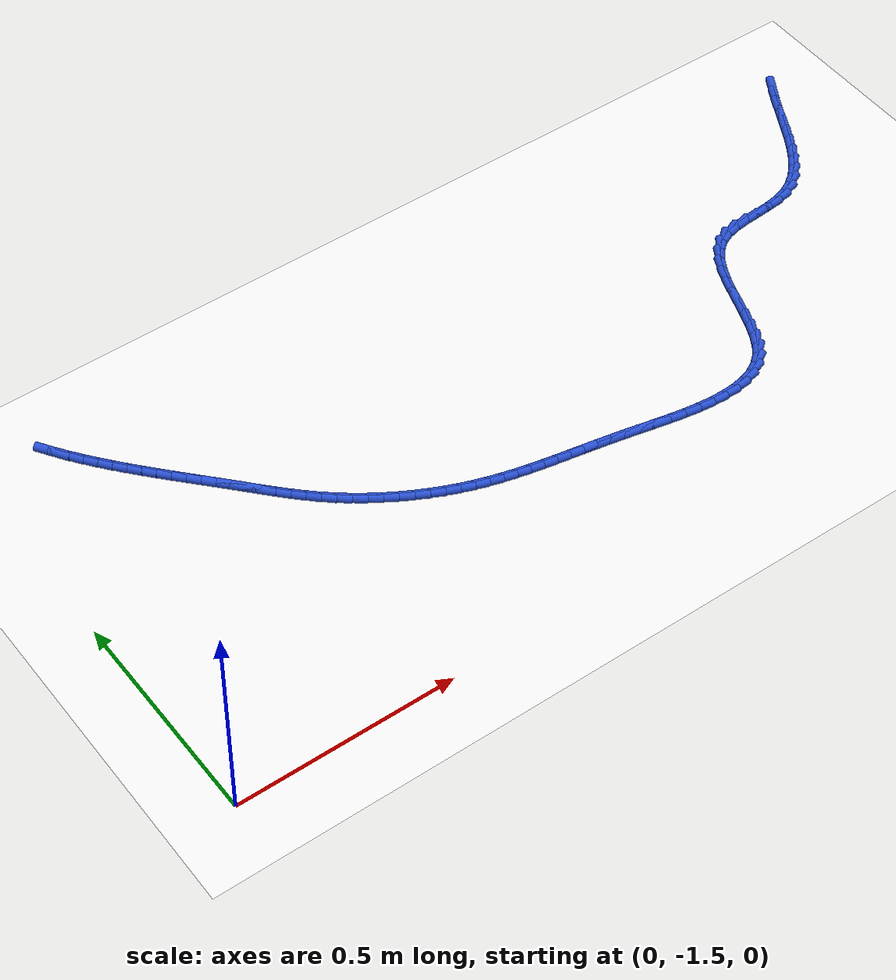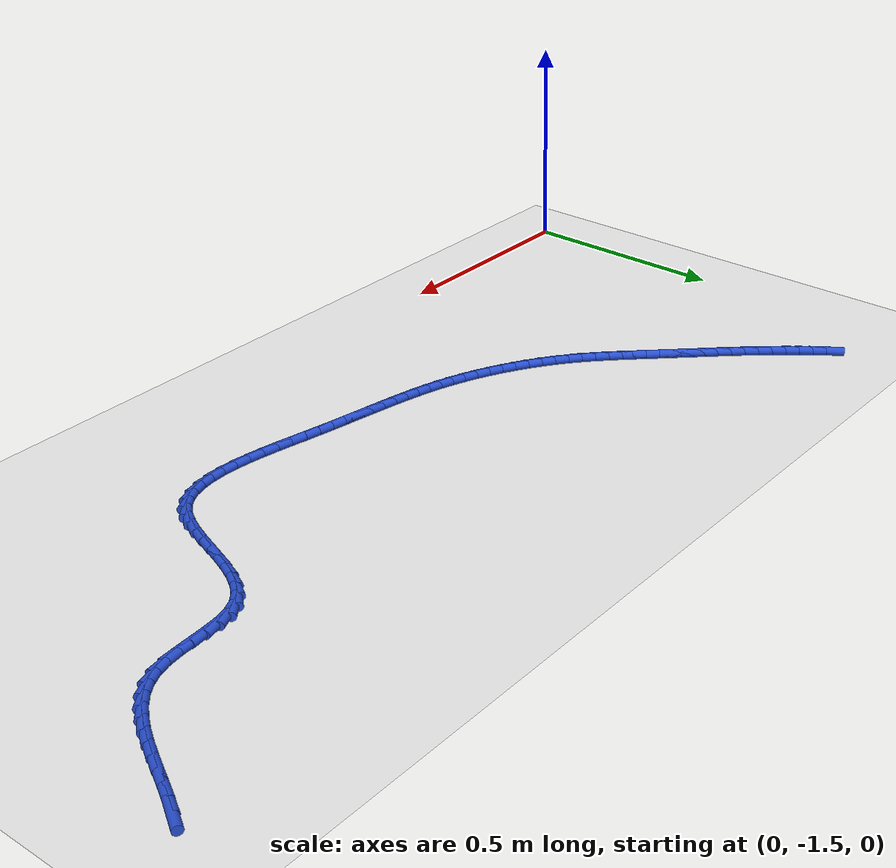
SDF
<sdf version="1.6">
 <world name="default">
  <model name="ground_plane">
   <static>1</static>
   <link name="link">
    <collision name="collision">
     <geometry><plane><normal>0 0 1</normal><size>100 100</size></plane></geometry>
     <surface><friction><ode><mu>100</mu><mu2>50</mu2></ode></friction></surface>
    </collision>
    <visual name="visual">
     <cast_shadows>0</cast_shadows>
     <geometry><plane><normal>0 0 1</normal><size>100 100</size></plane></geometry>
     <material>
      <script><uri>file://media/materials/scripts/gazebo.material</uri><name>Gazebo/WhiteGlow</name></script>
     </material>
    </visual>
   </link>
  </model>
  <model name="line">
   <link name="link_141">
    <pose>2.0868482700561533 -0.5757188277680517 0.01 0 1.57 1.0497695654576624</pose>
    <collision name="collision">
     <geometry><cylinder><radius>0.01</radius><length>0.08</length></cylinder></geometry>
    </collision>
    <visual name="visual">
     <material>
      <script><name>Gazebo/Blue</name><uri>file://media/materials/scripts/gazebo.material</uri></script>
     </material>
     <geometry><cylinder><radius>0.01</radius><length>0.08</length></cylinder></geometry>
    </visual>
   </link>
   <link name="link_142">
    <pose>2.070050760424879 -0.60498655531769 0.01 0 1.57 1.081714339170749</pose>
    <collision name="collision">
     <geometry><cylinder><radius>0.01</radius><length>0.08</length></cylinder></geometry>
    </collision>
    <visual name="visual">
     <material>
      <script><name>Gazebo/Blue</name><uri>file://media/materials/scripts/gazebo.material</uri></script>
     </material>
     <geometry><cylinder><radius>0.01</radius><length>0.08</length></cylinder></geometry>
    </visual>
   </link>
   <link name="link_143">
    <pose>2.0540576509674735 -0.6350369554706778 0.01 0 1.57 1.0960622038245185</pose>
    <collision name="collision">
     <geometry><cylinder><radius>0.01</radius><length>0.08</length></cylinder></geometry>
    </collision>
    <visual name="visual">
     <material>
      <script><name>Gazebo/Blue</name><uri>file://media/materials/scripts/gazebo.material</uri></script>
     </material>
     <geometry><cylinder><radius>0.01</radius><length>0.08</length></cylinder></geometry>
    </visual>
   </link>
   <link name="link_144">
    <pose>2.0384884671146235 -0.6653309705653818 0.01 0 1.57 1.0932082392516</pose>
    <collision name="collision">
     <geometry><cylinder><radius>0.01</radius><length>0.08</length></cylinder></geometry>
    </collision>
    <visual name="visual">
     <material>
      <script><name>Gazebo/Blue</name><uri>file://media/materials/scripts/gazebo.material</uri></script>
     </material>
     <geometry><cylinder><radius>0.01</radius><length>0.08</length></cylinder></geometry>
    </visual>
   </link>
   <link name="link_145">
    <pose>2.0229627342970162 -0.6953295429401681 0.01 0 1.57 1.0726374273146841</pose>
    <collision name="collision">
     <geometry><cylinder><radius>0.01</radius><length>0.08</length></cylinder></geometry>
    </collision>
    <visual name="visual">
     <material>
      <script><name>Gazebo/Blue</name><uri>file://media/materials/scripts/gazebo.material</uri></script>
     </material>
     <geometry><cylinder><radius>0.01</radius><length>0.08</length></cylinder></geometry>
    </visual>
   </link>
   <link name="link_146">
    <pose>2.0070999779453382 -0.7244936149334031 0.01 0 1.57 1.0328690640263993</pose>
    <collision name="collision">
     <geometry><cylinder><radius>0.01</radius><length>0.08</length></cylinder></geometry>
    </collision>
    <visual name="visual">
     <material>
      <script><name>Gazebo/Blue</name><uri>file://media/materials/scripts/gazebo.material</uri></script>
     </material>
     <geometry><cylinder><radius>0.01</radius><length>0.08</length></cylinder></geometry>
    </visual>
   </link>
   <link name="link_147">
    <pose>1.9905197234902756 -0.7522841288834535 0.01 0 1.57 0.9714756544072928</pose>
    <collision name="collision">
     <geometry><cylinder><radius>0.01</radius><length>0.08</length></cylinder></geometry>
    </collision>
    <visual name="visual">
     <material>
      <script><name>Gazebo/Blue</name><uri>file://media/materials/scripts/gazebo.material</uri></script>
     </material>
     <geometry><cylinder><radius>0.01</radius><length>0.08</length></cylinder></geometry>
    </visual>
   </link>
   <link name="link_148">
    <pose>1.9728414963625158 -0.7781620271286842 0.01 0 1.57 0.8853286299328608</pose>
    <collision name="collision">
     <geometry><cylinder><radius>0.01</radius><length>0.08</length></cylinder></geometry>
    </collision>
    <visual name="visual">
     <material>
      <script><name>Gazebo/Blue</name><uri>file://media/materials/scripts/gazebo.material</uri></script>
     </material>
     <geometry><cylinder><radius>0.01</radius><length>0.08</length></cylinder></geometry>
    </visual>
   </link>
   <link name="link_149">
    <pose>1.9536848219927465 -0.8015882520074623 0.01 0 1.57 0.771404213848801</pose>
    <collision name="collision">
     <geometry><cylinder><radius>0.01</radius><length>0.08</length></cylinder></geometry>
    </collision>
    <visual name="visual">
     <material>
      <script><name>Gazebo/Blue</name><uri>file://media/materials/scripts/gazebo.material</uri></script>
     </material>
     <geometry><cylinder><radius>0.01</radius><length>0.08</length></cylinder></geometry>
    </visual>
   </link>
   <link name="link_150">
    <pose>1.9326692258116525 -0.8220237458581536 0.01 0 1.57 0.6285989111137188</pose>
    <collision name="collision">
     <geometry><cylinder><radius>0.01</radius><length>0.08</length></cylinder></geometry>
    </collision>
    <visual name="visual">
     <material>
      <script><name>Gazebo/Blue</name><uri>file://media/materials/scripts/gazebo.material</uri></script>
     </material>
     <geometry><cylinder><radius>0.01</radius><length>0.08</length></cylinder></geometry>
    </visual>
   </link>
   <link name="link_151">
    <pose>1.9094142332499215 -0.838929451019125 0.01 0 1.57 0.46053325886857144</pose>
    <collision name="collision">
     <geometry><cylinder><radius>0.01</radius><length>0.08</length></cylinder></geometry>
    </collision>
    <visual name="visual">
     <material>
      <script><name>Gazebo/Blue</name><uri>file://media/materials/scripts/gazebo.material</uri></script>
     </material>
     <geometry><cylinder><radius>0.01</radius><length>0.08</length></cylinder></geometry>
    </visual>
   </link>
   <link name="link_152">
    <pose>1.8835393697382408 -0.8517663098287421 0.01 0 1.57 0.2807268472819979</pose>
    <collision name="collision">
     <geometry><cylinder><radius>0.01</radius><length>0.08</length></cylinder></geometry>
    </collision>
    <visual name="visual">
     <material>
      <script><name>Gazebo/Blue</name><uri>file://media/materials/scripts/gazebo.material</uri></script>
     </material>
     <geometry><cylinder><radius>0.01</radius><length>0.08</length></cylinder></geometry>
    </visual>
   </link>
   <link name="link_153">
    <pose>1.8547194753691074 -0.8600762796387333 0.01 0 1.57 0.14490175157847032</pose>
    <collision name="collision">
     <geometry><cylinder><radius>0.01</radius><length>0.08</length></cylinder></geometry>
    </collision>
    <visual name="visual">
     <material>
      <script><name>Gazebo/Blue</name><uri>file://media/materials/scripts/gazebo.material</uri></script>
     </material>
     <geometry><cylinder><radius>0.01</radius><length>0.08</length></cylinder></geometry>
    </visual>
   </link>
   <link name="link_154">
    <pose>1.8234723909819142 -0.8646359943682631 0.01 0 1.57 0.07824607830905576</pose>
    <collision name="collision">
     <geometry><cylinder><radius>0.01</radius><length>0.08</length></cylinder></geometry>
    </collision>
    <visual name="visual">
     <material>
      <script><name>Gazebo/Blue</name><uri>file://media/materials/scripts/gazebo.material</uri></script>
     </material>
     <geometry><cylinder><radius>0.01</radius><length>0.08</length></cylinder></geometry>
    </visual>
   </link>
   <link name="link_155">
    <pose>1.7909728317687854 -0.8671841598849002 0.01 0 1.57 0.07054470162190267</pose>
    <collision name="collision">
     <geometry><cylinder><radius>0.01</radius><length>0.08</length></cylinder></geometry>
    </collision>
    <visual name="visual">
     <material>
      <script><name>Gazebo/Blue</name><uri>file://media/materials/scripts/gazebo.material</uri></script>
     </material>
     <geometry><cylinder><radius>0.01</radius><length>0.08</length></cylinder></geometry>
    </visual>
   </link>
   <link name="link_156">
    <pose>1.758412874524758 -0.8694849102238165 0.01 0 1.57 0.12087392398452639</pose>
    <collision name="collision">
     <geometry><cylinder><radius>0.01</radius><length>0.08</length></cylinder></geometry>
    </collision>
    <visual name="visual">
     <material>
      <script><name>Gazebo/Blue</name><uri>file://media/materials/scripts/gazebo.material</uri></script>
     </material>
     <geometry><cylinder><radius>0.01</radius><length>0.08</length></cylinder></geometry>
    </visual>
   </link>
   <link name="link_157">
    <pose>1.7269845960448624 -0.8733023794201842 0.01 0 1.57 0.23922050773377004</pose>
    <collision name="collision">
     <geometry><cylinder><radius>0.01</radius><length>0.08</length></cylinder></geometry>
    </collision>
    <visual name="visual">
     <material>
      <script><name>Gazebo/Blue</name><uri>file://media/materials/scripts/gazebo.material</uri></script>
     </material>
     <geometry><cylinder><radius>0.01</radius><length>0.08</length></cylinder></geometry>
    </visual>
   </link>
   <link name="link_158">
    <pose>1.697880073124133 -0.880400701509176 0.01 0 1.57 0.44254591268933074</pose>
    <collision name="collision">
     <geometry><cylinder><radius>0.01</radius><length>0.08</length></cylinder></geometry>
    </collision>
    <visual name="visual">
     <material>
      <script><name>Gazebo/Blue</name><uri>file://media/materials/scripts/gazebo.material</uri></script>
     </material>
     <geometry><cylinder><radius>0.01</radius><length>0.08</length></cylinder></geometry>
    </visual>
   </link>
   <link name="link_159">
    <pose>1.6722826854923027 -0.8925311611996024 0.01 0 1.57 0.6940749387545673</pose>
    <collision name="collision">
     <geometry><cylinder><radius>0.01</radius><length>0.08</length></cylinder></geometry>
    </collision>
    <visual name="visual">
     <material>
      <script><name>Gazebo/Blue</name><uri>file://media/materials/scripts/gazebo.material</uri></script>
     </material>
     <geometry><cylinder><radius>0.01</radius><length>0.08</length></cylinder></geometry>
    </visual>
   </link>
   <link name="link_160">
    <pose>1.6507198783240626 -0.9104759442135106 0.01 0 1.57 0.902123510475342</pose>
    <collision name="collision">
     <geometry><cylinder><radius>0.01</radius><length>0.08</length></cylinder></geometry>
    </collision>
    <visual name="visual">
     <material>
      <script><name>Gazebo/Blue</name><uri>file://media/materials/scripts/gazebo.material</uri></script>
     </material>
     <geometry><cylinder><radius>0.01</radius><length>0.08</length></cylinder></geometry>
    </visual>
   </link>
   <link name="link_161">
    <pose>1.6326167179854583 -0.9333885460655545 0.01 0 1.57 1.0526253918397517</pose>
    <collision name="collision">
     <geometry><cylinder><radius>0.01</radius><length>0.08</length></cylinder></geometry>
    </collision>
    <visual name="visual">
     <material>
      <script><name>Gazebo/Blue</name><uri>file://media/materials/scripts/gazebo.material</uri></script>
     </material>
     <geometry><cylinder><radius>0.01</radius><length>0.08</length></cylinder></geometry>
    </visual>
   </link>
   <link name="link_162">
    <pose>1.6172926695164083 -0.9602664434460083 0.01 0 1.57 1.1536092212361257</pose>
    <collision name="collision">
     <geometry><cylinder><radius>0.01</radius><length>0.08</length></cylinder></geometry>
    </collision>
    <visual name="visual">
     <material>
      <script><name>Gazebo/Blue</name><uri>file://media/materials/scripts/gazebo.material</uri></script>
     </material>
     <geometry><cylinder><radius>0.01</radius><length>0.08</length></cylinder></geometry>
    </visual>
   </link>
   <link name="link_163">
    <pose>1.6040671979568328 -0.9901071130451431 0.01 0 1.57 1.2152803799611773</pose>
    <collision name="collision">
     <geometry><cylinder><radius>0.01</radius><length>0.08</length></cylinder></geometry>
    </collision>
    <visual name="visual">
     <material>
      <script><name>Gazebo/Blue</name><uri>file://media/materials/scripts/gazebo.material</uri></script>
     </material>
     <geometry><cylinder><radius>0.01</radius><length>0.08</length></cylinder></geometry>
    </visual>
   </link>
   <link name="link_164">
    <pose>1.5922597683466524 -1.0219080315532338 0.01 0 1.57 1.244920136396728</pose>
    <collision name="collision">
     <geometry><cylinder><radius>0.01</radius><length>0.08</length></cylinder></geometry>
    </collision>
    <visual name="visual">
     <material>
      <script><name>Gazebo/Blue</name><uri>file://media/materials/scripts/gazebo.material</uri></script>
     </material>
     <geometry><cylinder><radius>0.01</radius><length>0.08</length></cylinder></geometry>
    </visual>
   </link>
   <link name="link_165">
    <pose>1.5811898457257862 -1.054666675660553 0.01 0 1.57 1.2460683005755346</pose>
    <collision name="collision">
     <geometry><cylinder><radius>0.01</radius><length>0.08</length></cylinder></geometry>
    </collision>
    <visual name="visual">
     <material>
      <script><name>Gazebo/Blue</name><uri>file://media/materials/scripts/gazebo.material</uri></script>
     </material>
     <geometry><cylinder><radius>0.01</radius><length>0.08</length></cylinder></geometry>
    </visual>
   </link>
   <link name="link_166">
    <pose>1.5701768951341535 -1.0873805220573736 0.01 0 1.57 1.2186431578017984</pose>
    <collision name="collision">
     <geometry><cylinder><radius>0.01</radius><length>0.08</length></cylinder></geometry>
    </collision>
    <visual name="visual">
     <material>
      <script><name>Gazebo/Blue</name><uri>file://media/materials/scripts/gazebo.material</uri></script>
     </material>
     <geometry><cylinder><radius>0.01</radius><length>0.08</length></cylinder></geometry>
    </visual>
   </link>
   <link name="link_167">
    <pose>1.558540381611675 -1.1190470474339695 0.01 0 1.57 1.158858883931804</pose>
    <collision name="collision">
     <geometry><cylinder><radius>0.01</radius><length>0.08</length></cylinder></geometry>
    </collision>
    <visual name="visual">
     <material>
      <script><name>Gazebo/Blue</name><uri>file://media/materials/scripts/gazebo.material</uri></script>
     </material>
     <geometry><cylinder><radius>0.01</radius><length>0.08</length></cylinder></geometry>
    </visual>
   </link>
   <link name="link_168">
    <pose>1.5455997701982702 -1.1486637284806136 0.01 0 1.57 1.0588983465171604</pose>
    <collision name="collision">
     <geometry><cylinder><radius>0.01</radius><length>0.08</length></cylinder></geometry>
    </collision>
    <visual name="visual">
     <material>
      <script><name>Gazebo/Blue</name><uri>file://media/materials/scripts/gazebo.material</uri></script>
     </material>
     <geometry><cylinder><radius>0.01</radius><length>0.08</length></cylinder></geometry>
    </visual>
   </link>
   <link name="link_169">
    <pose>1.5306745259338588 -1.1752280418875791 0.01 0 1.57 0.9074574577301515</pose>
    <collision name="collision">
     <geometry><cylinder><radius>0.01</radius><length>0.08</length></cylinder></geometry>
    </collision>
    <visual name="visual">
     <material>
      <script><name>Gazebo/Blue</name><uri>file://media/materials/scripts/gazebo.material</uri></script>
     </material>
     <geometry><cylinder><radius>0.01</radius><length>0.08</length></cylinder></geometry>
    </visual>
   </link>
   <link name="link_170">
    <pose>1.5130841138583597 -1.1977374643451397 0.01 0 1.57 0.7025351067429351</pose>
    <collision name="collision">
     <geometry><cylinder><radius>0.01</radius><length>0.08</length></cylinder></geometry>
    </collision>
    <visual name="visual">
     <material>
      <script><name>Gazebo/Blue</name><uri>file://media/materials/scripts/gazebo.material</uri></script>
     </material>
     <geometry><cylinder><radius>0.01</radius><length>0.08</length></cylinder></geometry>
    </visual>
   </link>
   <link name="link_171">
    <pose>1.4922683576117004 -1.2153607351306024 0.01 0 1.57 0.4943339869187233</pose>
    <collision name="collision">
     <geometry><cylinder><radius>0.01</radius><length>0.08</length></cylinder></geometry>
    </collision>
    <visual name="visual">
     <material>
      <script><name>Gazebo/Blue</name><uri>file://media/materials/scripts/gazebo.material</uri></script>
     </material>
     <geometry><cylinder><radius>0.01</radius><length>0.08</length></cylinder></geometry>
    </visual>
   </link>
   <link name="link_172">
    <pose>1.4683569438036854 -1.2282482243886577 0.01 0 1.57 0.3140886659193652</pose>
    <collision name="collision">
     <geometry><cylinder><radius>0.01</radius><length>0.08</length></cylinder></geometry>
    </collision>
    <visual name="visual">
     <material>
      <script><name>Gazebo/Blue</name><uri>file://media/materials/scripts/gazebo.material</uri></script>
     </material>
     <geometry><cylinder><radius>0.01</radius><length>0.08</length></cylinder></geometry>
    </visual>
   </link>
   <link name="link_173">
    <pose>1.4417249083340813 -1.2368994186056934 0.01 0 1.57 0.16800984130143268</pose>
    <collision name="collision">
     <geometry><cylinder><radius>0.01</radius><length>0.08</length></cylinder></geometry>
    </collision>
    <visual name="visual">
     <material>
      <script><name>Gazebo/Blue</name><uri>file://media/materials/scripts/gazebo.material</uri></script>
     </material>
     <geometry><cylinder><radius>0.01</radius><length>0.08</length></cylinder></geometry>
    </visual>
   </link>
   <link name="link_174">
    <pose>1.412747583191155 -1.2418142255830893 0.01 0 1.57 0.05417874890019835</pose>
    <collision name="collision">
     <geometry><cylinder><radius>0.01</radius><length>0.08</length></cylinder></geometry>
    </collision>
    <visual name="visual">
     <material>
      <script><name>Gazebo/Blue</name><uri>file://media/materials/scripts/gazebo.material</uri></script>
     </material>
     <geometry><cylinder><radius>0.01</radius><length>0.08</length></cylinder></geometry>
    </visual>
   </link>
   <link name="link_175">
    <pose>1.381800300363175 -1.2434925531222252 0.01 0 1.57 -0.03250796731429631</pose>
    <collision name="collision">
     <geometry><cylinder><radius>0.01</radius><length>0.08</length></cylinder></geometry>
    </collision>
    <visual name="visual">
     <material>
      <script><name>Gazebo/Blue</name><uri>file://media/materials/scripts/gazebo.material</uri></script>
     </material>
     <geometry><cylinder><radius>0.01</radius><length>0.08</length></cylinder></geometry>
    </visual>
   </link>
   <link name="link_176">
    <pose>1.3492583918384073 -1.242434309024481 0.01 0 1.57 -0.09728641472345086</pose>
    <collision name="collision">
     <geometry><cylinder><radius>0.01</radius><length>0.08</length></cylinder></geometry>
    </collision>
    <visual name="visual">
     <material>
      <script><name>Gazebo/Blue</name><uri>file://media/materials/scripts/gazebo.material</uri></script>
     </material>
     <geometry><cylinder><radius>0.01</radius><length>0.08</length></cylinder></geometry>
    </visual>
   </link>
   <link name="link_177">
    <pose>1.3154971896051195 -1.2391394010912358 0.01 0 1.57 -0.1443902320888946</pose>
    <collision name="collision">
     <geometry><cylinder><radius>0.01</radius><length>0.08</length></cylinder></geometry>
    </collision>
    <visual name="visual">
     <material>
      <script><name>Gazebo/Blue</name><uri>file://media/materials/scripts/gazebo.material</uri></script>
     </material>
     <geometry><cylinder><radius>0.01</radius><length>0.08</length></cylinder></geometry>
    </visual>
   </link>
   <link name="link_178">
    <pose>1.2808920256515792 -1.2341077371238691 0.01 0 1.57 -0.17685625283297388</pose>
    <collision name="collision">
     <geometry><cylinder><radius>0.01</radius><length>0.08</length></cylinder></geometry>
    </collision>
    <visual name="visual">
     <material>
      <script><name>Gazebo/Blue</name><uri>file://media/materials/scripts/gazebo.material</uri></script>
     </material>
     <geometry><cylinder><radius>0.01</radius><length>0.08</length></cylinder></geometry>
    </visual>
   </link>
   <link name="link_179">
    <pose>1.2458182319660538 -1.2278392249237609 0.01 0 1.57 -0.19663080624631973</pose>
    <collision name="collision">
     <geometry><cylinder><radius>0.01</radius><length>0.08</length></cylinder></geometry>
    </collision>
    <visual name="visual">
     <material>
      <script><name>Gazebo/Blue</name><uri>file://media/materials/scripts/gazebo.material</uri></script>
     </material>
     <geometry><cylinder><radius>0.01</radius><length>0.08</length></cylinder></geometry>
    </visual>
   </link>
   <link name="link_180">
    <pose>1.21065114053681 -1.2208337722922902 0.01 0 1.57 -0.20470200443101372</pose>
    <collision name="collision">
     <geometry><cylinder><radius>0.01</radius><length>0.08</length></cylinder></geometry>
    </collision>
    <visual name="visual">
     <material>
      <script><name>Gazebo/Blue</name><uri>file://media/materials/scripts/gazebo.material</uri></script>
     </material>
     <geometry><cylinder><radius>0.01</radius><length>0.08</length></cylinder></geometry>
    </visual>
   </link>
   <link name="link_181">
    <pose>1.175766083352115 -1.2135912870308363 0.01 0 1.57 -0.2011694199263228</pose>
    <collision name="collision">
     <geometry><cylinder><radius>0.01</radius><length>0.08</length></cylinder></geometry>
    </collision>
    <visual name="visual">
     <material>
      <script><name>Gazebo/Blue</name><uri>file://media/materials/scripts/gazebo.material</uri></script>
     </material>
     <geometry><cylinder><radius>0.01</radius><length>0.08</length></cylinder></geometry>
    </visual>
   </link>
   <link name="link_182">
    <pose>1.1415380997057472 -1.206611249705508 0.01 0 1.57 -0.1895239498314442</pose>
    <collision name="collision">
     <geometry><cylinder><radius>0.01</radius><length>0.08</length></cylinder></geometry>
    </collision>
    <visual name="visual">
     <material>
      <script><name>Gazebo/Blue</name><uri>file://media/materials/scripts/gazebo.material</uri></script>
     </material>
     <geometry><cylinder><radius>0.01</radius><length>0.08</length></cylinder></geometry>
    </visual>
   </link>
   <link name="link_183">
    <pose>1.108224130269721 -1.2002207567117518 0.01 0 1.57 -0.18018519221271387</pose>
    <collision name="collision">
     <geometry><cylinder><radius>0.01</radius><length>0.08</length></cylinder></geometry>
    </collision>
    <visual name="visual">
     <material>
      <script><name>Gazebo/Blue</name><uri>file://media/materials/scripts/gazebo.material</uri></script>
     </material>
     <geometry><cylinder><radius>0.01</radius><length>0.08</length></cylinder></geometry>
    </visual>
   </link>
   <link name="link_184">
    <pose>1.0757826058825504 -1.1943111807311075 0.01 0 1.57 -0.17523981284075116</pose>
    <collision name="collision">
     <geometry><cylinder><radius>0.01</radius><length>0.08</length></cylinder></geometry>
    </collision>
    <visual name="visual">
     <material>
      <script><name>Gazebo/Blue</name><uri>file://media/materials/scripts/gazebo.material</uri></script>
     </material>
     <geometry><cylinder><radius>0.01</radius><length>0.08</length></cylinder></geometry>
    </visual>
   </link>
   <link name="link_185">
    <pose>1.0441255154737976 -1.1887061049160013 0.01 0 1.57 -0.17509019031941636</pose>
    <collision name="collision">
     <geometry><cylinder><radius>0.01</radius><length>0.08</length></cylinder></geometry>
    </collision>
    <visual name="visual">
     <material>
      <script><name>Gazebo/Blue</name><uri>file://media/materials/scripts/gazebo.material</uri></script>
     </material>
     <geometry><cylinder><radius>0.01</radius><length>0.08</length></cylinder></geometry>
    </visual>
   </link>
   <link name="link_186">
    <pose>1.013164847973028 -1.1832291124188596 0.01 0 1.57 -0.18006825623796263</pose>
    <collision name="collision">
     <geometry><cylinder><radius>0.01</radius><length>0.08</length></cylinder></geometry>
    </collision>
    <visual name="visual">
     <material>
      <script><name>Gazebo/Blue</name><uri>file://media/materials/scripts/gazebo.material</uri></script>
     </material>
     <geometry><cylinder><radius>0.01</radius><length>0.08</length></cylinder></geometry>
    </visual>
   </link>
   <link name="link_187">
    <pose>0.9828125923098039 -1.177703786392108 0.01 0 1.57 -0.1904143459926589</pose>
    <collision name="collision">
     <geometry><cylinder><radius>0.01</radius><length>0.08</length></cylinder></geometry>
    </collision>
    <visual name="visual">
     <material>
      <script><name>Gazebo/Blue</name><uri>file://media/materials/scripts/gazebo.material</uri></script>
     </material>
     <geometry><cylinder><radius>0.01</radius><length>0.08</length></cylinder></geometry>
    </visual>
   </link>
   <link name="link_188">
    <pose>0.9529807374136879 -1.1719537099881725 0.01 0 1.57 -0.20625439186502292</pose>
    <collision name="collision">
     <geometry><cylinder><radius>0.01</radius><length>0.08</length></cylinder></geometry>
    </collision>
    <visual name="visual">
     <material>
      <script><name>Gazebo/Blue</name><uri>file://media/materials/scripts/gazebo.material</uri></script>
     </material>
     <geometry><cylinder><radius>0.01</radius><length>0.08</length></cylinder></geometry>
    </visual>
   </link>
   <link name="link_189">
    <pose>0.9235812722142444 -1.1658024663594793 0.01 0 1.57 -0.22757667741368803</pose>
    <collision name="collision">
     <geometry><cylinder><radius>0.01</radius><length>0.08</length></cylinder></geometry>
    </collision>
    <visual name="visual">
     <material>
      <script><name>Gazebo/Blue</name><uri>file://media/materials/scripts/gazebo.material</uri></script>
     </material>
     <geometry><cylinder><radius>0.01</radius><length>0.08</length></cylinder></geometry>
    </visual>
   </link>
   <link name="link_190">
    <pose>0.8945261856410363 -1.1590736386584548 0.01 0 1.57 -0.2542106852930838</pose>
    <collision name="collision">
     <geometry><cylinder><radius>0.01</radius><length>0.08</length></cylinder></geometry>
    </collision>
    <visual name="visual">
     <material>
      <script><name>Gazebo/Blue</name><uri>file://media/materials/scripts/gazebo.material</uri></script>
     </material>
     <geometry><cylinder><radius>0.01</radius><length>0.08</length></cylinder></geometry>
    </visual>
   </link>
   <link name="link_191">
    <pose>0.8657274666236265 -1.1515908100375243 0.01 0 1.57 -0.2858119782706275</pose>
    <collision name="collision">
     <geometry><cylinder><radius>0.01</radius><length>0.08</length></cylinder></geometry>
    </collision>
    <visual name="visual">
     <material>
      <script><name>Gazebo/Blue</name><uri>file://media/materials/scripts/gazebo.material</uri></script>
     </material>
     <geometry><cylinder><radius>0.01</radius><length>0.08</length></cylinder></geometry>
    </visual>
   </link>
   <link name="link_192">
    <pose>0.8370971040915782 -1.1431775636491144 0.01 0 1.57 -0.3218572400577034</pose>
    <collision name="collision">
     <geometry><cylinder><radius>0.01</radius><length>0.08</length></cylinder></geometry>
    </collision>
    <visual name="visual">
     <material>
      <script><name>Gazebo/Blue</name><uri>file://media/materials/scripts/gazebo.material</uri></script>
     </material>
     <geometry><cylinder><radius>0.01</radius><length>0.08</length></cylinder></geometry>
    </visual>
   </link>
   <link name="link_193">
    <pose>0.8085471184972429 -1.133657517359426 0.01 0 1.57 -0.36070602731438633</pose>
    <collision name="collision">
     <geometry><cylinder><radius>0.01</radius><length>0.08</length></cylinder></geometry>
    </collision>
    <visual name="visual">
     <material>
      <script><name>Gazebo/Blue</name><uri>file://media/materials/scripts/gazebo.material</uri></script>
     </material>
     <geometry><cylinder><radius>0.01</radius><length>0.08</length></cylinder></geometry>
    </visual>
   </link>
   <link name="link_194">
    <pose>0.7800324097462639 -1.1229015090880878 0.01 0 1.57 -0.39923751639578314</pose>
    <collision name="collision">
     <geometry><cylinder><radius>0.01</radius><length>0.08</length></cylinder></geometry>
    </collision>
    <visual name="visual">
     <material>
      <script><name>Gazebo/Blue</name><uri>file://media/materials/scripts/gazebo.material</uri></script>
     </material>
     <geometry><cylinder><radius>0.01</radius><length>0.08</length></cylinder></geometry>
    </visual>
   </link>
   <link name="link_195">
    <pose>0.7516356245856798 -1.110921055149917 0.01 0 1.57 -0.4372134859904367</pose>
    <collision name="collision">
     <geometry><cylinder><radius>0.01</radius><length>0.08</length></cylinder></geometry>
    </collision>
    <visual name="visual">
     <material>
      <script><name>Gazebo/Blue</name><uri>file://media/materials/scripts/gazebo.material</uri></script>
     </material>
     <geometry><cylinder><radius>0.01</radius><length>0.08</length></cylinder></geometry>
    </visual>
   </link>
   <link name="link_196">
    <pose>0.7234630931929468 -1.0977537527157992 0.01 0 1.57 -0.47494934207704814</pose>
    <collision name="collision">
     <geometry><cylinder><radius>0.01</radius><length>0.08</length></cylinder></geometry>
    </collision>
    <visual name="visual">
     <material>
      <script><name>Gazebo/Blue</name><uri>file://media/materials/scripts/gazebo.material</uri></script>
     </material>
     <geometry><cylinder><radius>0.01</radius><length>0.08</length></cylinder></geometry>
    </visual>
   </link>
   <link name="link_197">
    <pose>0.6956211457455219 -1.083437198956621 0.01 0 1.57 -0.5127463187992859</pose>
    <collision name="collision">
     <geometry><cylinder><radius>0.01</radius><length>0.08</length></cylinder></geometry>
    </collision>
    <visual name="visual">
     <material>
      <script><name>Gazebo/Blue</name><uri>file://media/materials/scripts/gazebo.material</uri></script>
     </material>
     <geometry><cylinder><radius>0.01</radius><length>0.08</length></cylinder></geometry>
    </visual>
   </link>
   <link name="link_198">
    <pose>0.6682161124208618 -1.0680089910432689 0.01 0 1.57 -0.5508967691841014</pose>
    <collision name="collision">
     <geometry><cylinder><radius>0.01</radius><length>0.08</length></cylinder></geometry>
    </collision>
    <visual name="visual">
     <material>
      <script><name>Gazebo/Blue</name><uri>file://media/materials/scripts/gazebo.material</uri></script>
     </material>
     <geometry><cylinder><radius>0.01</radius><length>0.08</length></cylinder></geometry>
    </visual>
   </link>
   <link name="link_199">
    <pose>0.6413543233964231 -1.0515067261466302 0.01 0 1.57 -0.5896888048504402</pose>
    <collision name="collision">
     <geometry><cylinder><radius>0.01</radius><length>0.08</length></cylinder></geometry>
    </collision>
    <visual name="visual">
     <material>
      <script><name>Gazebo/Blue</name><uri>file://media/materials/scripts/gazebo.material</uri></script>
     </material>
     <geometry><cylinder><radius>0.01</radius><length>0.08</length></cylinder></geometry>
    </visual>
   </link>
   <link name="link_200">
    <pose>0.6151421088496618 -1.03396800143759 0.01 0 1.57 -0.6294102704086331</pose>
    <collision name="collision">
     <geometry><cylinder><radius>0.01</radius><length>0.08</length></cylinder></geometry>
    </collision>
    <visual name="visual">
     <material>
      <script><name>Gazebo/Blue</name><uri>file://media/materials/scripts/gazebo.material</uri></script>
     </material>
     <geometry><cylinder><radius>0.01</radius><length>0.08</length></cylinder></geometry>
    </visual>
   </link>
   <link name="link_201">
    <pose>0.5896857989580361 -1.0154304140870363 0.01 0 1.57 -0.6703519838755078</pose>
    <collision name="collision">
     <geometry><cylinder><radius>0.01</radius><length>0.08</length></cylinder></geometry>
    </collision>
    <visual name="visual">
     <material>
      <script><name>Gazebo/Blue</name><uri>file://media/materials/scripts/gazebo.material</uri></script>
     </material>
     <geometry><cylinder><radius>0.01</radius><length>0.08</length></cylinder></geometry>
    </visual>
   </link>
   <link name="link_202">
    <pose>0.5650917238990018 -0.9959315612658547 0.01 0 1.57 -0.7126297705507643</pose>
    <collision name="collision">
     <geometry><cylinder><radius>0.01</radius><length>0.08</length></cylinder></geometry>
    </collision>
    <visual name="visual">
     <material>
      <script><name>Gazebo/Blue</name><uri>file://media/materials/scripts/gazebo.material</uri></script>
     </material>
     <geometry><cylinder><radius>0.01</radius><length>0.08</length></cylinder></geometry>
    </visual>
   </link>
   <link name="link_203">
    <pose>0.5414603732648564 -0.9755114358188659 0.01 0 1.57 -0.7520077721753934</pose>
    <collision name="collision">
     <geometry><cylinder><radius>0.01</radius><length>0.08</length></cylinder></geometry>
    </collision>
    <visual name="visual">
     <material>
      <script><name>Gazebo/Blue</name><uri>file://media/materials/scripts/gazebo.material</uri></script>
     </material>
     <geometry><cylinder><radius>0.01</radius><length>0.08</length></cylinder></geometry>
    </visual>
   </link>
   <link name="link_204">
    <pose>0.518749383046441 -0.9542686258583248 0.01 0 1.57 -0.7837018474510752</pose>
    <collision name="collision">
     <geometry><cylinder><radius>0.01</radius><length>0.08</length></cylinder></geometry>
    </collision>
    <visual name="visual">
     <material>
      <script><name>Gazebo/Blue</name><uri>file://media/materials/scripts/gazebo.material</uri></script>
     </material>
     <geometry><cylinder><radius>0.01</radius><length>0.08</length></cylinder></geometry>
    </visual>
   </link>
   <link name="link_205">
    <pose>0.49676863550153083 -0.9323623246854001 0.01 0 1.57 -0.8072930187549817</pose>
    <collision name="collision">
     <geometry><cylinder><radius>0.01</radius><length>0.08</length></cylinder></geometry>
    </collision>
    <visual name="visual">
     <material>
      <script><name>Gazebo/Blue</name><uri>file://media/materials/scripts/gazebo.material</uri></script>
     </material>
     <geometry><cylinder><radius>0.01</radius><length>0.08</length></cylinder></geometry>
    </visual>
   </link>
   <link name="link_206">
    <pose>0.47532119192694916 -0.9099545234028363 0.01 0 1.57 -0.8226880308971248</pose>
    <collision name="collision">
     <geometry><cylinder><radius>0.01</radius><length>0.08</length></cylinder></geometry>
    </collision>
    <visual name="visual">
     <material>
      <script><name>Gazebo/Blue</name><uri>file://media/materials/scripts/gazebo.material</uri></script>
     </material>
     <geometry><cylinder><radius>0.01</radius><length>0.08</length></cylinder></geometry>
    </visual>
   </link>
   <link name="link_207">
    <pose>0.4542101136195195 -0.8872072131133769 0.01 0 1.57 -0.8298638929737153</pose>
    <collision name="collision">
     <geometry><cylinder><radius>0.01</radius><length>0.08</length></cylinder></geometry>
    </collision>
    <visual name="visual">
     <material>
      <script><name>Gazebo/Blue</name><uri>file://media/materials/scripts/gazebo.material</uri></script>
     </material>
     <geometry><cylinder><radius>0.01</radius><length>0.08</length></cylinder></geometry>
    </visual>
   </link>
   <link name="link_208">
    <pose>0.43323846187606496 -0.8642823849197658 0.01 0 1.57 -0.8290044174109896</pose>
    <collision name="collision">
     <geometry><cylinder><radius>0.01</radius><length>0.08</length></cylinder></geometry>
    </collision>
    <visual name="visual">
     <material>
      <script><name>Gazebo/Blue</name><uri>file://media/materials/scripts/gazebo.material</uri></script>
     </material>
     <geometry><cylinder><radius>0.01</radius><length>0.08</length></cylinder></geometry>
    </visual>
   </link>
   <link name="link_209">
    <pose>0.4122134375295968 -0.8413388397837804 0.01 0 1.57 -0.8250180915617056</pose>
    <collision name="collision">
     <geometry><cylinder><radius>0.01</radius><length>0.08</length></cylinder></geometry>
    </collision>
    <visual name="visual">
     <material>
      <script><name>Gazebo/Blue</name><uri>file://media/materials/scripts/gazebo.material</uri></script>
     </material>
     <geometry><cylinder><radius>0.01</radius><length>0.08</length></cylinder></geometry>
    </visual>
   </link>
   <link name="link_210">
    <pose>0.39106298019462504 -0.8184423311092439 0.01 0 1.57 -0.8234331879656998</pose>
    <collision name="collision">
     <geometry><cylinder><radius>0.01</radius><length>0.08</length></cylinder></geometry>
    </collision>
    <visual name="visual">
     <material>
      <script><name>Gazebo/Blue</name><uri>file://media/materials/scripts/gazebo.material</uri></script>
     </material>
     <geometry><cylinder><radius>0.01</radius><length>0.08</length></cylinder></geometry>
    </visual>
   </link>
   <link name="link_211">
    <pose>0.3698519260650054 -0.7955531127062139 0.01 0 1.57 -0.8245366768929447</pose>
    <collision name="collision">
     <geometry><cylinder><radius>0.01</radius><length>0.08</length></cylinder></geometry>
    </collision>
    <visual name="visual">
     <material>
      <script><name>Gazebo/Blue</name><uri>file://media/materials/scripts/gazebo.material</uri></script>
     </material>
     <geometry><cylinder><radius>0.01</radius><length>0.08</length></cylinder></geometry>
    </visual>
   </link>
   <link name="link_212">
    <pose>0.34865249841866885 -0.7726257455151909 0.01 0 1.57 -0.8283250074572489</pose>
    <collision name="collision">
     <geometry><cylinder><radius>0.01</radius><length>0.08</length></cylinder></geometry>
    </collision>
    <visual name="visual">
     <material>
      <script><name>Gazebo/Blue</name><uri>file://media/materials/scripts/gazebo.material</uri></script>
     </material>
     <geometry><cylinder><radius>0.01</radius><length>0.08</length></cylinder></geometry>
    </visual>
   </link>
   <link name="link_213">
    <pose>0.3275369205335466 -0.7496147904766756 0.01 0 1.57 -0.8348024296728614</pose>
    <collision name="collision">
     <geometry><cylinder><radius>0.01</radius><length>0.08</length></cylinder></geometry>
    </collision>
    <visual name="visual">
     <material>
      <script><name>Gazebo/Blue</name><uri>file://media/materials/scripts/gazebo.material</uri></script>
     </material>
     <geometry><cylinder><radius>0.01</radius><length>0.08</length></cylinder></geometry>
    </visual>
   </link>
   <link name="link_214">
    <pose>0.30657741568756935 -0.7264748085311679 0.01 0 1.57 -0.8439801852302515</pose>
    <collision name="collision">
     <geometry><cylinder><radius>0.01</radius><length>0.08</length></cylinder></geometry>
    </collision>
    <visual name="visual">
     <material>
      <script><name>Gazebo/Blue</name><uri>file://media/materials/scripts/gazebo.material</uri></script>
     </material>
     <geometry><cylinder><radius>0.01</radius><length>0.08</length></cylinder></geometry>
    </visual>
   </link>
   <link name="link_215">
    <pose>0.2858462071586677 -0.7031603606191679 0.01 0 1.57 -0.8558751499060956</pose>
    <collision name="collision">
     <geometry><cylinder><radius>0.01</radius><length>0.08</length></cylinder></geometry>
    </collision>
    <visual name="visual">
     <material>
      <script><name>Gazebo/Blue</name><uri>file://media/materials/scripts/gazebo.material</uri></script>
     </material>
     <geometry><cylinder><radius>0.01</radius><length>0.08</length></cylinder></geometry>
    </visual>
   </link>
   <link name="link_216">
    <pose>0.26541551822477355 -0.679626007681177 0.01 0 1.57 -0.8705078881853706</pose>
    <collision name="collision">
     <geometry><cylinder><radius>0.01</radius><length>0.08</length></cylinder></geometry>
    </collision>
    <visual name="visual">
     <material>
      <script><name>Gazebo/Blue</name><uri>file://media/materials/scripts/gazebo.material</uri></script>
     </material>
     <geometry><cylinder><radius>0.01</radius><length>0.08</length></cylinder></geometry>
    </visual>
   </link>
   <link name="link_217">
    <pose>0.24535757216381765 -0.6558263106576955 0.01 0 1.57 -0.887900069694455</pose>
    <collision name="collision">
     <geometry><cylinder><radius>0.01</radius><length>0.08</length></cylinder></geometry>
    </collision>
    <visual name="visual">
     <material>
      <script><name>Gazebo/Blue</name><uri>file://media/materials/scripts/gazebo.material</uri></script>
     </material>
     <geometry><cylinder><radius>0.01</radius><length>0.08</length></cylinder></geometry>
    </visual>
   </link>
   <link name="link_218">
    <pose>0.22574459225373064 -0.631715830489223 0.01 0 1.57 -0.9080711964273828</pose>
    <collision name="collision">
     <geometry><cylinder><radius>0.01</radius><length>0.08</length></cylinder></geometry>
    </collision>
    <visual name="visual">
     <material>
      <script><name>Gazebo/Blue</name><uri>file://media/materials/scripts/gazebo.material</uri></script>
     </material>
     <geometry><cylinder><radius>0.01</radius><length>0.08</length></cylinder></geometry>
    </visual>
   </link>
   <link name="link_219">
    <pose>0.20664880177244357 -0.6072491281162604 0.01 0 1.57 -0.9310346039888198</pose>
    <collision name="collision">
     <geometry><cylinder><radius>0.01</radius><length>0.08</length></cylinder></geometry>
    </collision>
    <visual name="visual">
     <material>
      <script><name>Gazebo/Blue</name><uri>file://media/materials/scripts/gazebo.material</uri></script>
     </material>
     <geometry><cylinder><radius>0.01</radius><length>0.08</length></cylinder></geometry>
    </visual>
   </link>
   <link name="link_220">
    <pose>0.18814242399788753 -0.582380764479308 0.01 0 1.57 -0.9567927343370739</pose>
    <collision name="collision">
     <geometry><cylinder><radius>0.01</radius><length>0.08</length></cylinder></geometry>
    </collision>
    <visual name="visual">
     <material>
      <script><name>Gazebo/Blue</name><uri>file://media/materials/scripts/gazebo.material</uri></script>
     </material>
     <geometry><cylinder><radius>0.01</radius><length>0.08</length></cylinder></geometry>
    </visual>
   </link>
   <link name="link_221">
    <pose>0.17029768220799332 -0.5570653005188662 0.01 0 1.57 -0.9853317368561918</pose>
    <collision name="collision">
     <geometry><cylinder><radius>0.01</radius><length>0.08</length></cylinder></geometry>
    </collision>
    <visual name="visual">
     <material>
      <script><name>Gazebo/Blue</name><uri>file://media/materials/scripts/gazebo.material</uri></script>
     </material>
     <geometry><cylinder><radius>0.01</radius><length>0.08</length></cylinder></geometry>
    </visual>
   </link>
  </model>
 </world>
</sdf>
